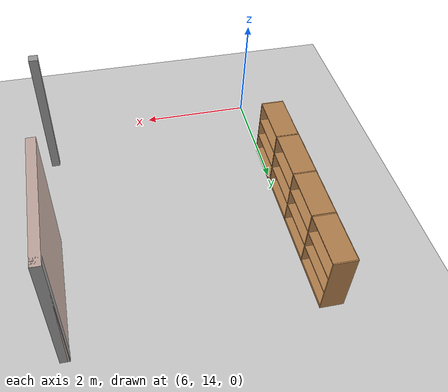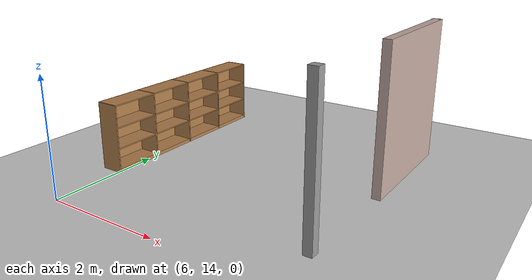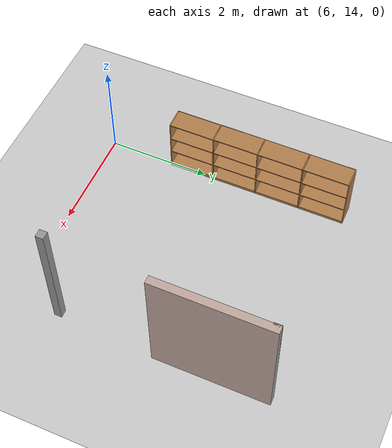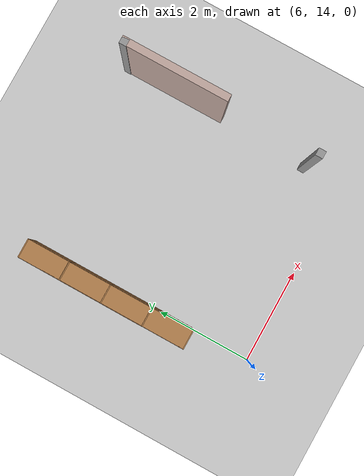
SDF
<sdf version="1.6">
 <world name="default">
  <model name="ground_plane">
   <static>1</static>
   <link name="link">
    <collision name="collision">
     <geometry><plane><normal>0 0 1</normal><size>100 100</size></plane></geometry>
     <surface><friction><ode><mu>100</mu><mu2>50</mu2></ode></friction></surface>
    </collision>
    <visual name="visual">
     <cast_shadows>0</cast_shadows>
     <geometry><plane><normal>0 0 1</normal><size>100 100</size></plane></geometry>
     <material>
      <script><uri>file://media/materials/scripts/gazebo.material</uri><name>Gazebo/Grey</name></script>
     </material>
    </visual>
   </link>
  </model>
  <model name="floor">
   <link name="Wall_140">
    <pose>8.70489 16.1529 0 0 -0 0</pose>
    <visual name="Wall_140_Visual">
     <pose>0 0 1.25 0 -0 0</pose>
     <geometry><box><size>0.15 0.15 2.5</size></box></geometry>
     <material>
      <script><uri>file://media/materials/scripts/gazebo.material</uri><name>Gazebo/Grey</name></script>
      <ambient>1 1 1 1</ambient>
     </material>
     <meta><layer>0</layer></meta>
    </visual>
    <collision name="Wall_140_Collision">
     <pose>0 0 1.25 0 -0 0</pose>
     <geometry><box><size>0.15 0.15 2.5</size></box></geometry>
     <surface>
      <friction>
       <ode><mu>1</mu><mu2>1</mu2><fdir1>0 0 0</fdir1><slip1>0</slip1><slip2>0</slip2></ode>
       <torsional>
        <coefficient>1</coefficient>
        <patch_radius>0</patch_radius>
        <surface_radius>0</surface_radius>
        <use_patch_radius>1</use_patch_radius>
        <ode><slip>0</slip></ode>
       </torsional>
      </friction>
      <bounce><restitution_coefficient>0</restitution_coefficient><threshold>1e+06</threshold></bounce>
      <contact>
       <collide_without_contact>0</collide_without_contact>
       <collide_without_contact_bitmask>1</collide_without_contact_bitmask>
       <collide_bitmask>1</collide_bitmask>
       <ode>
        <soft_cfm>0</soft_cfm>
        <soft_erp>0.2</soft_erp>
        <kp>1e+13</kp>
        <kd>1</kd>
        <max_vel>0.01</max_vel>
        <min_depth>0</min_depth>
       </ode>
       <bullet>
        <split_impulse>1</split_impulse>
        <split_impulse_penetration_threshold>-0.01</split_impulse_penetration_threshold>
        <soft_cfm>0</soft_cfm>
        <soft_erp>0.2</soft_erp>
        <kp>1e+13</kp>
        <kd>1</kd>
       </bullet>
      </contact>
     </surface>
    </collision>
   </link>
   <link name="Wall_142">
    <pose>8.78315 20.239 0 0 -0 0</pose>
    <visual name="Wall_142_Visual">
     <pose>0 0 1.25 0 -0 0</pose>
     <geometry><box><size>0.16 0.15 2.5</size></box></geometry>
     <material>
      <script><uri>file://media/materials/scripts/gazebo.material</uri><name>Gazebo/Grey</name></script>
      <ambient>1 1 1 1</ambient>
     </material>
     <meta><layer>0</layer></meta>
    </visual>
    <collision name="Wall_142_Collision">
     <pose>0 0 1.25 0 -0 0</pose>
     <geometry><box><size>0.16 0.15 2.5</size></box></geometry>
     <surface>
      <friction>
       <ode><mu>1</mu><mu2>1</mu2><fdir1>0 0 0</fdir1><slip1>0</slip1><slip2>0</slip2></ode>
       <torsional>
        <coefficient>1</coefficient>
        <patch_radius>0</patch_radius>
        <surface_radius>0</surface_radius>
        <use_patch_radius>1</use_patch_radius>
        <ode><slip>0</slip></ode>
       </torsional>
      </friction>
      <bounce><restitution_coefficient>0</restitution_coefficient><threshold>1e+06</threshold></bounce>
      <contact>
       <collide_without_contact>0</collide_without_contact>
       <collide_without_contact_bitmask>1</collide_without_contact_bitmask>
       <collide_bitmask>1</collide_bitmask>
       <ode>
        <soft_cfm>0</soft_cfm>
        <soft_erp>0.2</soft_erp>
        <kp>1e+13</kp>
        <kd>1</kd>
        <max_vel>0.01</max_vel>
        <min_depth>0</min_depth>
       </ode>
       <bullet>
        <split_impulse>1</split_impulse>
        <split_impulse_penetration_threshold>-0.01</split_impulse_penetration_threshold>
        <soft_cfm>0</soft_cfm>
        <soft_erp>0.2</soft_erp>
        <kp>1e+13</kp>
        <kd>1</kd>
       </bullet>
      </contact>
     </surface>
    </collision>
   </link>
   <link name="Wall_143">
    <pose>8.78815 19.189 0 0 0 -1.5708</pose>
    <visual name="Wall_143_Visual">
     <pose>0 0 1.25 0 -0 0</pose>
     <geometry><box><size>2.25 0.15 2.5</size></box></geometry>
     <material>
      <script><uri>file://media/materials/scripts/gazebo.material</uri><name>Gazebo/Grey</name></script>
      <ambient>0.760784 0.662745 0.627451 1</ambient>
     </material>
     <meta><layer>0</layer></meta>
    </visual>
    <collision name="Wall_143_Collision">
     <pose>0 0 1.25 0 -0 0</pose>
     <geometry><box><size>2.25 0.15 2.5</size></box></geometry>
     <surface>
      <friction>
       <ode><mu>1</mu><mu2>1</mu2><fdir1>0 0 0</fdir1><slip1>0</slip1><slip2>0</slip2></ode>
       <torsional>
        <coefficient>1</coefficient>
        <patch_radius>0</patch_radius>
        <surface_radius>0</surface_radius>
        <use_patch_radius>1</use_patch_radius>
        <ode><slip>0</slip></ode>
       </torsional>
      </friction>
      <bounce><restitution_coefficient>0</restitution_coefficient><threshold>1e+06</threshold></bounce>
      <contact>
       <collide_without_contact>0</collide_without_contact>
       <collide_without_contact_bitmask>1</collide_without_contact_bitmask>
       <collide_bitmask>1</collide_bitmask>
       <ode>
        <soft_cfm>0</soft_cfm>
        <soft_erp>0.2</soft_erp>
        <kp>1e+13</kp>
        <kd>1</kd>
        <max_vel>0.01</max_vel>
        <min_depth>0</min_depth>
       </ode>
       <bullet>
        <split_impulse>1</split_impulse>
        <split_impulse_penetration_threshold>-0.01</split_impulse_penetration_threshold>
        <soft_cfm>0</soft_cfm>
        <soft_erp>0.2</soft_erp>
        <kp>1e+13</kp>
        <kd>1</kd>
       </bullet>
      </contact>
     </surface>
    </collision>
   </link>
   <static>1</static>
   <pose>1.26361 -1.27025 0 0 -0 0</pose>
  </model>
  <model name="Bookshelf-4_clone_31_clone_1">
   <model name="bookshelf">
    <static>1</static>
    <link name="link">
     <inertial><mass>1</mass></inertial>
     <collision name="back">
      <pose>0 0.005 0.6 0 -0 0</pose>
      <geometry><box><size>0.9 0.01 1.2</size></box></geometry>
     </collision>
     <visual name="visual1">
      <pose>0 0.005 0.6 0 -0 0</pose>
      <geometry><box><size>0.9 0.01 1.2</size></box></geometry>
      <material>
       <script><uri>file://media/materials/scripts/gazebo.material</uri><name>Gazebo/Wood</name></script>
      </material>
     </visual>
     <collision name="left_side">
      <pose>0.45 -0.195 0.6 0 -0 0</pose>
      <geometry><box><size>0.02 0.4 1.2</size></box></geometry>
     </collision>
     <visual name="visual2">
      <pose>0.45 -0.195 0.6 0 -0 0</pose>
      <geometry><box><size>0.02 0.4 1.2</size></box></geometry>
      <material>
       <script><uri>file://media/materials/scripts/gazebo.material</uri><name>Gazebo/Wood</name></script>
      </material>
     </visual>
     <collision name="right_side">
      <pose>-0.45 -0.195 0.6 0 -0 0</pose>
      <geometry><box><size>0.02 0.4 1.2</size></box></geometry>
     </collision>
     <visual name="visual3">
      <pose>-0.45 -0.195 0.6 0 -0 0</pose>
      <geometry><box><size>0.02 0.4 1.2</size></box></geometry>
      <material>
       <script><uri>file://media/materials/scripts/gazebo.material</uri><name>Gazebo/Wood</name></script>
      </material>
     </visual>
     <collision name="bottom">
      <pose>0 -0.195 0.03 0 -0 0</pose>
      <geometry><box><size>0.88 0.4 0.06</size></box></geometry>
     </collision>
     <visual name="visual4">
      <pose>0 -0.195 0.03 0 -0 0</pose>
      <geometry><box><size>0.88 0.4 0.06</size></box></geometry>
      <material>
       <script><uri>file://media/materials/scripts/gazebo.material</uri><name>Gazebo/Wood</name></script>
      </material>
     </visual>
     <collision name="top">
      <pose>0 -0.195 1.19 0 -0 0</pose>
      <geometry><box><size>0.88 0.4 0.02</size></box></geometry>
     </collision>
     <visual name="visual5">
      <pose>0 -0.195 1.19 0 -0 0</pose>
      <geometry><box><size>0.88 0.4 0.02</size></box></geometry>
      <material>
       <script><uri>file://media/materials/scripts/gazebo.material</uri><name>Gazebo/Wood</name></script>
      </material>
     </visual>
     <collision name="low_shelf">
      <pose>0 -0.195 0.43 0 -0 0</pose>
      <geometry><box><size>0.88 0.4 0.02</size></box></geometry>
     </collision>
     <visual name="visual6">
      <pose>0 -0.195 0.43 0 -0 0</pose>
      <geometry><box><size>0.88 0.4 0.02</size></box></geometry>
      <material>
       <script><uri>file://media/materials/scripts/gazebo.material</uri><name>Gazebo/Wood</name></script>
      </material>
     </visual>
     <collision name="high_shelf">
      <pose>0 -0.195 0.8 0 -0 0</pose>
      <geometry><box><size>0.88 0.4 0.02</size></box></geometry>
     </collision>
     <visual name="visual7">
      <pose>0 -0.195 0.8 0 -0 0</pose>
      <geometry><box><size>0.88 0.4 0.02</size></box></geometry>
      <material>
       <script><uri>file://media/materials/scripts/gazebo.material</uri><name>Gazebo/Wood</name></script>
      </material>
     </visual>
    </link>
    <pose>-1.35671 -0.002097 0 0 -0 0</pose>
   </model>
   <model name="bookshelf_0">
    <static>1</static>
    <link name="link">
     <inertial><mass>1</mass></inertial>
     <collision name="back">
      <pose>0 0.005 0.6 0 -0 0</pose>
      <geometry><box><size>0.9 0.01 1.2</size></box></geometry>
     </collision>
     <visual name="visual1">
      <pose>0 0.005 0.6 0 -0 0</pose>
      <geometry><box><size>0.9 0.01 1.2</size></box></geometry>
      <material>
       <script><uri>file://media/materials/scripts/gazebo.material</uri><name>Gazebo/Wood</name></script>
      </material>
     </visual>
     <collision name="left_side">
      <pose>0.45 -0.195 0.6 0 -0 0</pose>
      <geometry><box><size>0.02 0.4 1.2</size></box></geometry>
     </collision>
     <visual name="visual2">
      <pose>0.45 -0.195 0.6 0 -0 0</pose>
      <geometry><box><size>0.02 0.4 1.2</size></box></geometry>
      <material>
       <script><uri>file://media/materials/scripts/gazebo.material</uri><name>Gazebo/Wood</name></script>
      </material>
     </visual>
     <collision name="right_side">
      <pose>-0.45 -0.195 0.6 0 -0 0</pose>
      <geometry><box><size>0.02 0.4 1.2</size></box></geometry>
     </collision>
     <visual name="visual3">
      <pose>-0.45 -0.195 0.6 0 -0 0</pose>
      <geometry><box><size>0.02 0.4 1.2</size></box></geometry>
      <material>
       <script><uri>file://media/materials/scripts/gazebo.material</uri><name>Gazebo/Wood</name></script>
      </material>
     </visual>
     <collision name="bottom">
      <pose>0 -0.195 0.03 0 -0 0</pose>
      <geometry><box><size>0.88 0.4 0.06</size></box></geometry>
     </collision>
     <visual name="visual4">
      <pose>0 -0.195 0.03 0 -0 0</pose>
      <geometry><box><size>0.88 0.4 0.06</size></box></geometry>
      <material>
       <script><uri>file://media/materials/scripts/gazebo.material</uri><name>Gazebo/Wood</name></script>
      </material>
     </visual>
     <collision name="top">
      <pose>0 -0.195 1.19 0 -0 0</pose>
      <geometry><box><size>0.88 0.4 0.02</size></box></geometry>
     </collision>
     <visual name="visual5">
      <pose>0 -0.195 1.19 0 -0 0</pose>
      <geometry><box><size>0.88 0.4 0.02</size></box></geometry>
      <material>
       <script><uri>file://media/materials/scripts/gazebo.material</uri><name>Gazebo/Wood</name></script>
      </material>
     </visual>
     <collision name="low_shelf">
      <pose>0 -0.195 0.43 0 -0 0</pose>
      <geometry><box><size>0.88 0.4 0.02</size></box></geometry>
     </collision>
     <visual name="visual6">
      <pose>0 -0.195 0.43 0 -0 0</pose>
      <geometry><box><size>0.88 0.4 0.02</size></box></geometry>
      <material>
       <script><uri>file://media/materials/scripts/gazebo.material</uri><name>Gazebo/Wood</name></script>
      </material>
     </visual>
     <collision name="high_shelf">
      <pose>0 -0.195 0.8 0 -0 0</pose>
      <geometry><box><size>0.88 0.4 0.02</size></box></geometry>
     </collision>
     <visual name="visual7">
      <pose>0 -0.195 0.8 0 -0 0</pose>
      <geometry><box><size>0.88 0.4 0.02</size></box></geometry>
      <material>
       <script><uri>file://media/materials/scripts/gazebo.material</uri><name>Gazebo/Wood</name></script>
      </material>
     </visual>
    </link>
    <pose>-0.452974 0.001386 0 0 -0 0</pose>
   </model>
   <model name="bookshelf_1">
    <static>1</static>
    <link name="link">
     <inertial><mass>1</mass></inertial>
     <collision name="back">
      <pose>0 0.005 0.6 0 -0 0</pose>
      <geometry><box><size>0.9 0.01 1.2</size></box></geometry>
     </collision>
     <visual name="visual1">
      <pose>0 0.005 0.6 0 -0 0</pose>
      <geometry><box><size>0.9 0.01 1.2</size></box></geometry>
      <material>
       <script><uri>file://media/materials/scripts/gazebo.material</uri><name>Gazebo/Wood</name></script>
      </material>
     </visual>
     <collision name="left_side">
      <pose>0.45 -0.195 0.6 0 -0 0</pose>
      <geometry><box><size>0.02 0.4 1.2</size></box></geometry>
     </collision>
     <visual name="visual2">
      <pose>0.45 -0.195 0.6 0 -0 0</pose>
      <geometry><box><size>0.02 0.4 1.2</size></box></geometry>
      <material>
       <script><uri>file://media/materials/scripts/gazebo.material</uri><name>Gazebo/Wood</name></script>
      </material>
     </visual>
     <collision name="right_side">
      <pose>-0.45 -0.195 0.6 0 -0 0</pose>
      <geometry><box><size>0.02 0.4 1.2</size></box></geometry>
     </collision>
     <visual name="visual3">
      <pose>-0.45 -0.195 0.6 0 -0 0</pose>
      <geometry><box><size>0.02 0.4 1.2</size></box></geometry>
      <material>
       <script><uri>file://media/materials/scripts/gazebo.material</uri><name>Gazebo/Wood</name></script>
      </material>
     </visual>
     <collision name="bottom">
      <pose>0 -0.195 0.03 0 -0 0</pose>
      <geometry><box><size>0.88 0.4 0.06</size></box></geometry>
     </collision>
     <visual name="visual4">
      <pose>0 -0.195 0.03 0 -0 0</pose>
      <geometry><box><size>0.88 0.4 0.06</size></box></geometry>
      <material>
       <script><uri>file://media/materials/scripts/gazebo.material</uri><name>Gazebo/Wood</name></script>
      </material>
     </visual>
     <collision name="top">
      <pose>0 -0.195 1.19 0 -0 0</pose>
      <geometry><box><size>0.88 0.4 0.02</size></box></geometry>
     </collision>
     <visual name="visual5">
      <pose>0 -0.195 1.19 0 -0 0</pose>
      <geometry><box><size>0.88 0.4 0.02</size></box></geometry>
      <material>
       <script><uri>file://media/materials/scripts/gazebo.material</uri><name>Gazebo/Wood</name></script>
      </material>
     </visual>
     <collision name="low_shelf">
      <pose>0 -0.195 0.43 0 -0 0</pose>
      <geometry><box><size>0.88 0.4 0.02</size></box></geometry>
     </collision>
     <visual name="visual6">
      <pose>0 -0.195 0.43 0 -0 0</pose>
      <geometry><box><size>0.88 0.4 0.02</size></box></geometry>
      <material>
       <script><uri>file://media/materials/scripts/gazebo.material</uri><name>Gazebo/Wood</name></script>
      </material>
     </visual>
     <collision name="high_shelf">
      <pose>0 -0.195 0.8 0 -0 0</pose>
      <geometry><box><size>0.88 0.4 0.02</size></box></geometry>
     </collision>
     <visual name="visual7">
      <pose>0 -0.195 0.8 0 -0 0</pose>
      <geometry><box><size>0.88 0.4 0.02</size></box></geometry>
      <material>
       <script><uri>file://media/materials/scripts/gazebo.material</uri><name>Gazebo/Wood</name></script>
      </material>
     </visual>
    </link>
    <pose>0.450456 0.000733 0 0 -0 0</pose>
   </model>
   <model name="bookshelf_2">
    <static>1</static>
    <link name="link">
     <inertial><mass>1</mass></inertial>
     <collision name="back">
      <pose>0 0.005 0.6 0 -0 0</pose>
      <geometry><box><size>0.9 0.01 1.2</size></box></geometry>
     </collision>
     <visual name="visual1">
      <pose>0 0.005 0.6 0 -0 0</pose>
      <geometry><box><size>0.9 0.01 1.2</size></box></geometry>
      <material>
       <script><uri>file://media/materials/scripts/gazebo.material</uri><name>Gazebo/Wood</name></script>
      </material>
     </visual>
     <collision name="left_side">
      <pose>0.45 -0.195 0.6 0 -0 0</pose>
      <geometry><box><size>0.02 0.4 1.2</size></box></geometry>
     </collision>
     <visual name="visual2">
      <pose>0.45 -0.195 0.6 0 -0 0</pose>
      <geometry><box><size>0.02 0.4 1.2</size></box></geometry>
      <material>
       <script><uri>file://media/materials/scripts/gazebo.material</uri><name>Gazebo/Wood</name></script>
      </material>
     </visual>
     <collision name="right_side">
      <pose>-0.45 -0.195 0.6 0 -0 0</pose>
      <geometry><box><size>0.02 0.4 1.2</size></box></geometry>
     </collision>
     <visual name="visual3">
      <pose>-0.45 -0.195 0.6 0 -0 0</pose>
      <geometry><box><size>0.02 0.4 1.2</size></box></geometry>
      <material>
       <script><uri>file://media/materials/scripts/gazebo.material</uri><name>Gazebo/Wood</name></script>
      </material>
     </visual>
     <collision name="bottom">
      <pose>0 -0.195 0.03 0 -0 0</pose>
      <geometry><box><size>0.88 0.4 0.06</size></box></geometry>
     </collision>
     <visual name="visual4">
      <pose>0 -0.195 0.03 0 -0 0</pose>
      <geometry><box><size>0.88 0.4 0.06</size></box></geometry>
      <material>
       <script><uri>file://media/materials/scripts/gazebo.material</uri><name>Gazebo/Wood</name></script>
      </material>
     </visual>
     <collision name="top">
      <pose>0 -0.195 1.19 0 -0 0</pose>
      <geometry><box><size>0.88 0.4 0.02</size></box></geometry>
     </collision>
     <visual name="visual5">
      <pose>0 -0.195 1.19 0 -0 0</pose>
      <geometry><box><size>0.88 0.4 0.02</size></box></geometry>
      <material>
       <script><uri>file://media/materials/scripts/gazebo.material</uri><name>Gazebo/Wood</name></script>
      </material>
     </visual>
     <collision name="low_shelf">
      <pose>0 -0.195 0.43 0 -0 0</pose>
      <geometry><box><size>0.88 0.4 0.02</size></box></geometry>
     </collision>
     <visual name="visual6">
      <pose>0 -0.195 0.43 0 -0 0</pose>
      <geometry><box><size>0.88 0.4 0.02</size></box></geometry>
      <material>
       <script><uri>file://media/materials/scripts/gazebo.material</uri><name>Gazebo/Wood</name></script>
      </material>
     </visual>
     <collision name="high_shelf">
      <pose>0 -0.195 0.8 0 -0 0</pose>
      <geometry><box><size>0.88 0.4 0.02</size></box></geometry>
     </collision>
     <visual name="visual7">
      <pose>0 -0.195 0.8 0 -0 0</pose>
      <geometry><box><size>0.88 0.4 0.02</size></box></geometry>
      <material>
       <script><uri>file://media/materials/scripts/gazebo.material</uri><name>Gazebo/Wood</name></script>
      </material>
     </visual>
    </link>
    <pose>1.35922 -1.7e-05 0 0 -0 0</pose>
   </model>
   <static>0</static>
   <pose>5.63657 17.0963 0 0 -0 1.5707</pose>
  </model>
 </world>
</sdf>
